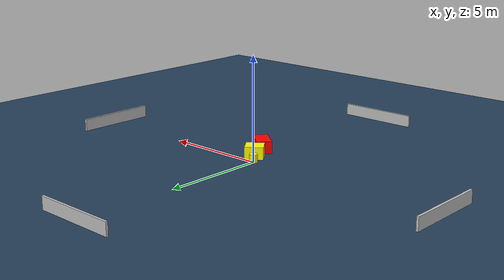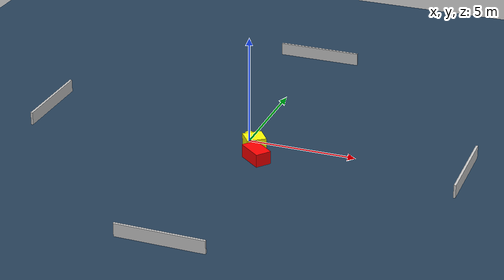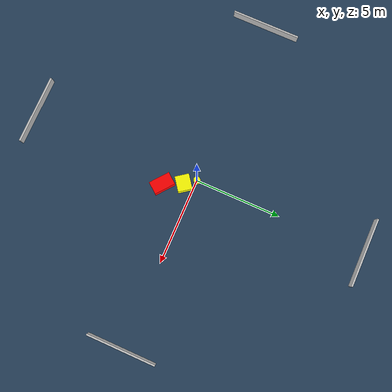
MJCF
<?xml version="1.0" ?>
<mujoco model="generated_environment">
  <option timestep="0.01" integrator="RK4" cone="elliptic"/>
  <default>
    <geom density="1"/>
  </default>
  <asset>
    <texture builtin="gradient" height="3072" name="skybox" rgb1="0.3 0.5 0.7" rgb2="0 0 0" type="skybox" width="512"/>
    <texture builtin="checker" height="300" name="groundplane" rgb1="0.2 0.3 0.4" rgb2="0.1 0.2 0.3" type="2d" width="300"/>
    <material name="groundplane" reflectance="0.2" texrepeat="5 5" texture="groundplane"/>
  </asset>
  <worldbody>
    <light dir="0 0 -1" directional="true" pos="0 0 1.5"/>
    <geom condim="3" friction="0.5 0.005 0.001" material="groundplane" name="floor" pos="0 0 0" size="0 0 0.05" type="plane"/>
    <body name="walls">
      <geom name="wall_1" condim="4" pos="-10.0 0.0 0.3" rgba="0.800000011920929 0.800000011920929 0.800000011920929 1.0" size="0.05 2.0 0.3" type="box"/>
      <geom name="wall_2" condim="4" pos="10.0 0.0 0.3" rgba="0.800000011920929 0.800000011920929 0.800000011920929 1.0" size="0.05 2.0 0.3" type="box"/>
      <geom name="wall_3" condim="4" pos="0.0 -10.0 0.3" rgba="0.800000011920929 0.800000011920929 0.800000011920929 1.0" size="2.0 0.05 0.3" type="box"/>
      <geom name="wall_4" condim="4" pos="0.0 10.0 0.3" rgba="0.800000011920929 0.800000011920929 0.800000011920929 1.0" size="2.0 0.05 0.3" type="box"/>
    </body>
    <body name="robot">
      <joint name="joint_x" type="slide" pos="0 0 0" axis="1 0 0"/>
      <joint name="joint_y" type="slide" pos="0 0 0" axis="0 1 0"/>
      <geom name="robot" type="cylinder" pos="0.0 0.0 0.2" size="0.2 0.2 0.0" mass="5.0" friction="1.0 0.005 0.0001" condim="4" rgba="1.0 1.0 0.0 1.0"/>
    </body>
    <body name="obstacle_1_movable">
      <geom name="obstacle_1_movable" condim="4" pos="0.4740817215727351 -0.6047209644228209 0.3" euler="0 0 126.73708566785727" friction="0.0 0.005 0.001" rgba="1.0 1.0 0.0 1.0" size="0.4087063991088171 0.44289708929256055 0.3" type="box" mass="0.1"/>
      <joint type="free"/>
    </body>
    <body name="obstacle_2_static">
      <geom name="obstacle_2_static" condim="4" pos="0.9757743017110581 -1.6880754342451403 0.3" euler="0 0 51.589511180317196" friction="0.0 0.005 0.001" rgba="1.0 0.0 0.0 1.0" size="0.36929160177394305 0.6176697764681545 0.3" type="box"/>
    </body>
  </worldbody>
  <actuator>
    <motor name="actuator_x" joint="joint_x" gear="1" ctrlrange="-1 1"/>
    <motor name="actuator_y" joint="joint_y" gear="1" ctrlrange="-1 1"/>
  </actuator>
</mujoco>
